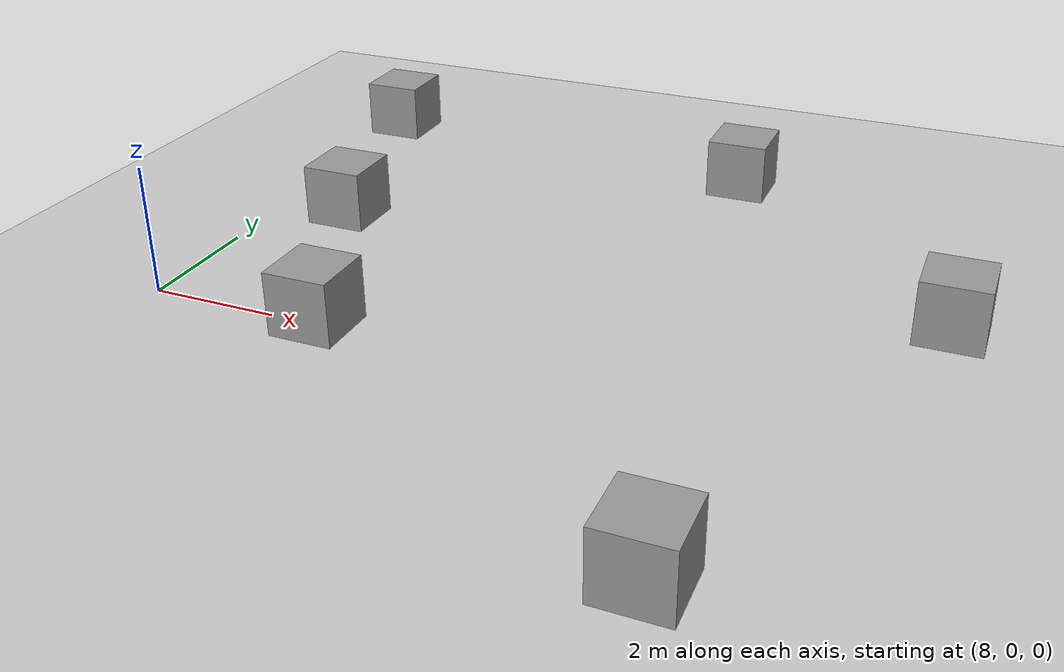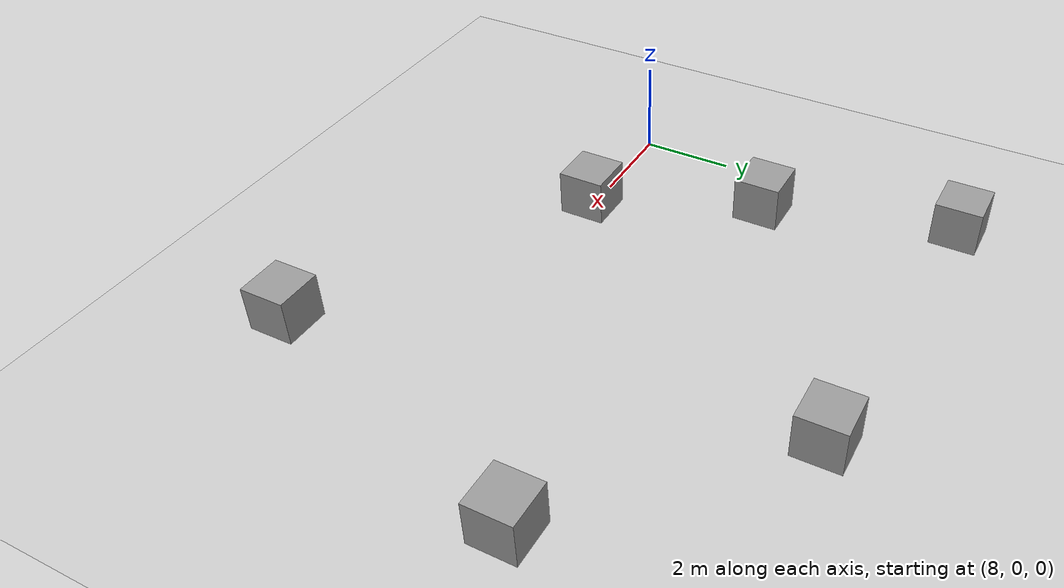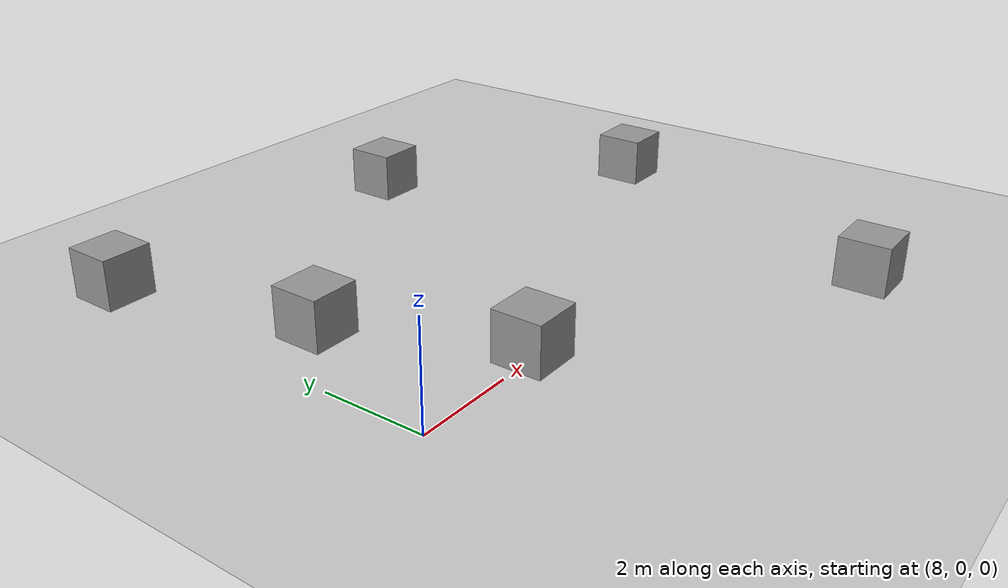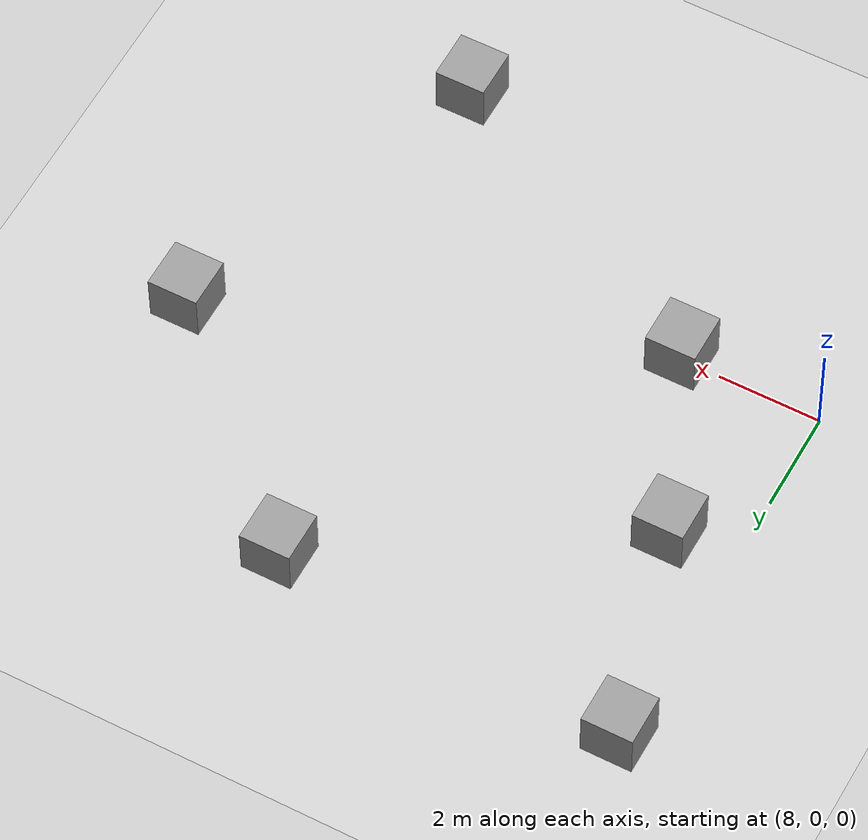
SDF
<sdf version="1.6">
 <world name="default">
  <physics name="default_physics" default="0" type="ode">
   <ode>
    <solver>
     <type>quick</type>
     <iters>100</iters>
     <sor>1</sor>
     <use_dynamic_moi_rescaling>0</use_dynamic_moi_rescaling>
    </solver>
    <constraints>
     <cfm>0</cfm>
     <erp>0.9</erp>
     <contact_max_correcting_vel>0.1</contact_max_correcting_vel>
     <contact_surface_layer>0</contact_surface_layer>
    </constraints>
   </ode>
   <real_time_update_rate>1000</real_time_update_rate>
   <max_step_size>0.001</max_step_size>
   <real_time_factor>1</real_time_factor>
  </physics>
  <scene>
   <sky><clouds><speed>12</speed></clouds></sky>
   <ambient>0.4 0.4 0.4 1</ambient>
   <background>0.25 0.25 0.25 1</background>
   <shadows>1</shadows>
  </scene>
  <model name="ground_plane">
   <static>1</static>
   <link name="link">
    <collision name="collision">
     <geometry><plane><normal>0 0 1</normal><size>5000 5000</size></plane></geometry>
     <surface><friction><ode><mu>1</mu><mu2>1</mu2></ode></friction></surface>
    </collision>
    <visual name="runway">
     <pose>0 0 0.005 0 -0 0</pose>
     <cast_shadows>0</cast_shadows>
     <geometry><plane><normal>0 0 1</normal><size>1829 45</size></plane></geometry>
     <material>
      <script><uri>file://media/materials/scripts/gazebo.material</uri><name>Gazebo/Runway</name></script>
     </material>
    </visual>
    <visual name="grass">
     <pose>0 0 -0.1 0 -0 0</pose>
     <cast_shadows>0</cast_shadows>
     <geometry><plane><normal>0 0 1</normal><size>5000 5000</size></plane></geometry>
     <material>
      <script><uri>file://media/materials/scripts/gazebo.material</uri><name>Gazebo/Grass</name></script>
     </material>
    </visual>
   </link>
  </model>
  <light name="sun" type="directional">
   <pose>0 0 10 0 -0 0</pose>
   <diffuse>0.8 0.8 0.8 1</diffuse>
   <specular>0.2 0.2 0.2 1</specular>
   <attenuation>
    <range>1000</range>
    <constant>0.9</constant>
    <linear>0.01</linear>
    <quadratic>0.001</quadratic>
   </attenuation>
   <direction>-0.5 0.1 -0.9</direction>
  </light>
  <gravity>0 0 -9.8</gravity>
  <magnetic_field>6e-06 2.3e-05 -4.2e-05</magnetic_field>
  <atmosphere type="adiabatic"/>
  <audio><device>default</device></audio>
  <spherical_coordinates>
   <surface_model>EARTH_WGS84</surface_model>
   <latitude_deg>0</latitude_deg>
   <longitude_deg>0</longitude_deg>
   <elevation>0</elevation>
   <heading_deg>0</heading_deg>
  </spherical_coordinates>
  <model name="unit_box">
   <pose>10.7929 -0.017447 0.5 0 -0 0</pose>
   <link name="link">
    <inertial>
     <mass>1</mass>
     <inertia>
      <ixx>0.166667</ixx>
      <ixy>0</ixy>
      <ixz>0</ixz>
      <iyy>0.166667</iyy>
      <iyz>0</iyz>
      <izz>0.166667</izz>
     </inertia>
    </inertial>
    <collision name="collision"><geometry><box><size>1 1 1</size></box></geometry></collision>
    <visual name="visual">
     <geometry><box><size>1 1 1</size></box></geometry>
     <material>
      <script><name>Gazebo/Grey</name><uri>file://media/materials/scripts/gazebo.material</uri></script>
     </material>
    </visual>
   </link>
  </model>
  <model name="unit_box_0">
   <pose>9.27241 3.44486 0.5 0 -0 0</pose>
   <link name="link">
    <inertial>
     <mass>1</mass>
     <inertia>
      <ixx>0.166667</ixx>
      <ixy>0</ixy>
      <ixz>0</ixz>
      <iyy>0.166667</iyy>
      <iyz>0</iyz>
      <izz>0.166667</izz>
     </inertia>
    </inertial>
    <collision name="collision"><geometry><box><size>1 1 1</size></box></geometry></collision>
    <visual name="visual">
     <geometry><box><size>1 1 1</size></box></geometry>
     <material>
      <script><name>Gazebo/Grey</name><uri>file://media/materials/scripts/gazebo.material</uri></script>
     </material>
    </visual>
   </link>
  </model>
  <model name="unit_box_1">
   <pose>19.2433 3.13174 0.5 0 -0 0</pose>
   <link name="link">
    <inertial>
     <mass>1</mass>
     <inertia>
      <ixx>0.166667</ixx>
      <ixy>0</ixy>
      <ixz>0</ixz>
      <iyy>0.166667</iyy>
      <iyz>0</iyz>
      <izz>0.166667</izz>
     </inertia>
    </inertial>
    <collision name="collision"><geometry><box><size>1 1 1</size></box></geometry></collision>
    <visual name="visual">
     <geometry><box><size>1 1 1</size></box></geometry>
     <material>
      <script><name>Gazebo/Grey</name><uri>file://media/materials/scripts/gazebo.material</uri></script>
     </material>
    </visual>
   </link>
  </model>
  <model name="unit_box_2">
   <pose>15.1254 7.05872 0.5 0 -0 0</pose>
   <link name="link">
    <inertial>
     <mass>1</mass>
     <inertia>
      <ixx>0.166667</ixx>
      <ixy>0</ixy>
      <ixz>0</ixz>
      <iyy>0.166667</iyy>
      <iyz>0</iyz>
      <izz>0.166667</izz>
     </inertia>
    </inertial>
    <collision name="collision"><geometry><box><size>1 1 1</size></box></geometry></collision>
    <visual name="visual">
     <geometry><box><size>1 1 1</size></box></geometry>
     <material>
      <script><name>Gazebo/Grey</name><uri>file://media/materials/scripts/gazebo.material</uri></script>
     </material>
    </visual>
   </link>
  </model>
  <model name="unit_box_3">
   <pose>16.9173 -3.45939 0.5 0 -0 0</pose>
   <link name="link">
    <inertial>
     <mass>1</mass>
     <inertia>
      <ixx>0.166667</ixx>
      <ixy>0</ixy>
      <ixz>0</ixz>
      <iyy>0.166667</iyy>
      <iyz>0</iyz>
      <izz>0.166667</izz>
     </inertia>
    </inertial>
    <collision name="collision"><geometry><box><size>1 1 1</size></box></geometry></collision>
    <visual name="visual">
     <geometry><box><size>1 1 1</size></box></geometry>
     <material>
      <script><name>Gazebo/Grey</name><uri>file://media/materials/scripts/gazebo.material</uri></script>
     </material>
    </visual>
   </link>
  </model>
  <model name="unit_box_4">
   <pose>8.15679 7.51298 0.5 0 -0 0</pose>
   <link name="link">
    <inertial>
     <mass>1</mass>
     <inertia>
      <ixx>0.166667</ixx>
      <ixy>0</ixy>
      <ixz>0</ixz>
      <iyy>0.166667</iyy>
      <iyz>0</iyz>
      <izz>0.166667</izz>
     </inertia>
    </inertial>
    <collision name="collision"><geometry><box><size>1 1 1</size></box></geometry></collision>
    <visual name="visual">
     <geometry><box><size>1 1 1</size></box></geometry>
     <material>
      <script><name>Gazebo/Grey</name><uri>file://media/materials/scripts/gazebo.material</uri></script>
     </material>
    </visual>
   </link>
  </model>
 </world>
</sdf>
